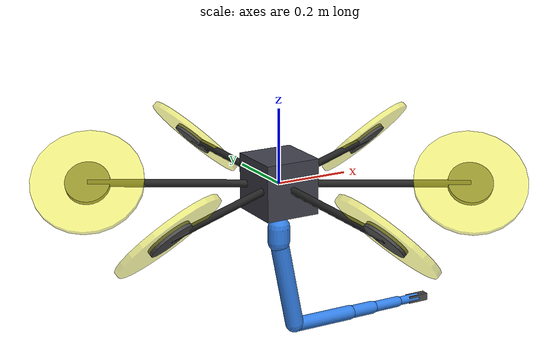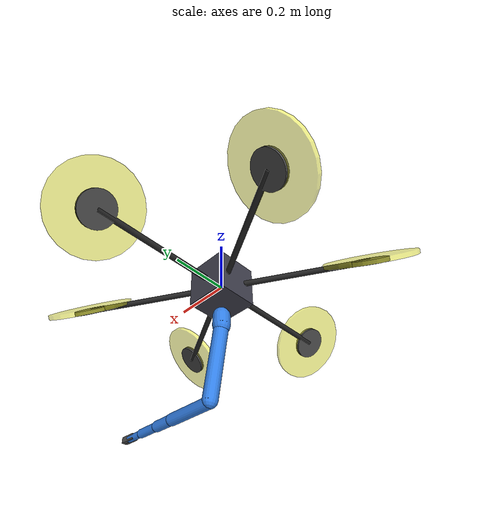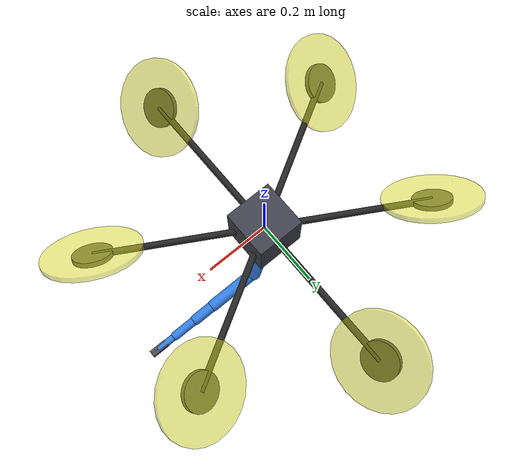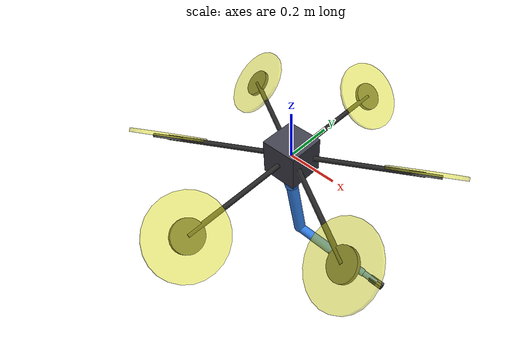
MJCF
<?xml version='1.0' encoding='utf-8'?>
<mujoco model="hexrotor_manipulator">
    <compiler angle="radian" coordinate="local" />
    <option gravity="0 0 -9.81" timestep="0.002" />
    <default>
        <geom contype="1" conaffinity="1" margin="0.002" friction="1.000000 0.100000 0.100000" />
        <joint damping="0.0" armature="0.0" />
        </default>
    <worldbody>
        <body name="drone_base" pos="0 0 0">
            <joint name="root_free" type="free" damping="0.0" armature="0.0" />
            <geom name="drone_chassis" type="box" size="0.075000 0.075000 0.075000" mass="6.000000" rgba="0.250000 0.250000 0.300000 1.000000" friction="1.000000 0.100000 0.100000" />
            <geom name="arm_1" type="cylinder" fromto="0.058457 0.033750 0.000000 0.433013 0.250000 0.000000" size="0.010000" mass="0.100000" rgba="0.150000 0.150000 0.150000 1.000000" />
            <geom name="arm_2" type="cylinder" fromto="0.058457 -0.033750 0.000000 0.433013 -0.250000 0.000000" size="0.010000" mass="0.100000" rgba="0.150000 0.150000 0.150000 1.000000" />
            <geom name="arm_3" type="cylinder" fromto="0.000000 -0.067500 0.000000 0.000000 -0.500000 0.000000" size="0.010000" mass="0.100000" rgba="0.150000 0.150000 0.150000 1.000000" />
            <geom name="arm_4" type="cylinder" fromto="-0.058457 -0.033750 0.000000 -0.433013 -0.250000 0.000000" size="0.010000" mass="0.100000" rgba="0.150000 0.150000 0.150000 1.000000" />
            <geom name="arm_5" type="cylinder" fromto="-0.058457 0.033750 0.000000 -0.433013 0.250000 0.000000" size="0.010000" mass="0.100000" rgba="0.150000 0.150000 0.150000 1.000000" />
            <geom name="arm_6" type="cylinder" fromto="-0.000000 0.067500 0.000000 -0.000000 0.500000 0.000000" size="0.010000" mass="0.100000" rgba="0.150000 0.150000 0.150000 1.000000" />
            <body name="rotor_1_motor" pos="0.433013 0.250000 0.000000" quat="0.923880 -0.331414 -0.191342 0.000000">
                <geom name="rotor_1_motor_geom" type="cylinder" size="0.060000 0.007500" mass="0.200000" rgba="0.3 0.3 0.3 1.0" />
                <body name="rotor_1" pos="0 0 0.007500">
                    <joint name="joint_prop_1" type="hinge" axis="0.000000 0.000000 1.000000" damping="0.0001" armature="0.0001" />
                    <geom name="rotor_1_disk" type="cylinder" size="0.150000 0.007500" mass="0.100000" rgba="0.9 0.9 0.1 0.5" />
                    </body>
                </body>
            <body name="rotor_2_motor" pos="0.433013 -0.250000 0.000000" quat="0.923880 0.331414 -0.191342 0.000000">
                <geom name="rotor_2_motor_geom" type="cylinder" size="0.060000 0.007500" mass="0.200000" rgba="0.3 0.3 0.3 1.0" />
                <body name="rotor_2" pos="0 0 0.007500">
                    <joint name="joint_prop_2" type="hinge" axis="0.000000 0.000000 1.000000" damping="0.0001" armature="0.0001" />
                    <geom name="rotor_2_disk" type="cylinder" size="0.150000 0.007500" mass="0.100000" rgba="0.9 0.9 0.1 0.5" />
                    </body>
                </body>
            <body name="rotor_3_motor" pos="0.000000 -0.500000 0.000000" quat="0.923880 -0.000000 0.382683 0.000000">
                <geom name="rotor_3_motor_geom" type="cylinder" size="0.060000 0.007500" mass="0.200000" rgba="0.3 0.3 0.3 1.0" />
                <body name="rotor_3" pos="0 0 0.007500">
                    <joint name="joint_prop_3" type="hinge" axis="0.000000 0.000000 1.000000" damping="0.0001" armature="0.0001" />
                    <geom name="rotor_3_disk" type="cylinder" size="0.150000 0.007500" mass="0.100000" rgba="0.9 0.9 0.1 0.5" />
                    </body>
                </body>
            <body name="rotor_4_motor" pos="-0.433013 -0.250000 0.000000" quat="0.923880 -0.331414 -0.191342 0.000000">
                <geom name="rotor_4_motor_geom" type="cylinder" size="0.060000 0.007500" mass="0.200000" rgba="0.3 0.3 0.3 1.0" />
                <body name="rotor_4" pos="0 0 0.007500">
                    <joint name="joint_prop_4" type="hinge" axis="0.000000 0.000000 1.000000" damping="0.0001" armature="0.0001" />
                    <geom name="rotor_4_disk" type="cylinder" size="0.150000 0.007500" mass="0.100000" rgba="0.9 0.9 0.1 0.5" />
                    </body>
                </body>
            <body name="rotor_5_motor" pos="-0.433013 0.250000 0.000000" quat="0.923880 0.331414 -0.191342 0.000000">
                <geom name="rotor_5_motor_geom" type="cylinder" size="0.060000 0.007500" mass="0.200000" rgba="0.3 0.3 0.3 1.0" />
                <body name="rotor_5" pos="0 0 0.007500">
                    <joint name="joint_prop_5" type="hinge" axis="0.000000 0.000000 1.000000" damping="0.0001" armature="0.0001" />
                    <geom name="rotor_5_disk" type="cylinder" size="0.150000 0.007500" mass="0.100000" rgba="0.9 0.9 0.1 0.5" />
                    </body>
                </body>
            <body name="rotor_6_motor" pos="-0.000000 0.500000 0.000000" quat="0.923880 -0.000000 0.382683 0.000000">
                <geom name="rotor_6_motor_geom" type="cylinder" size="0.060000 0.007500" mass="0.200000" rgba="0.3 0.3 0.3 1.0" />
                <body name="rotor_6" pos="0 0 0.007500">
                    <joint name="joint_prop_6" type="hinge" axis="0.000000 0.000000 1.000000" damping="0.0001" armature="0.0001" />
                    <geom name="rotor_6_disk" type="cylinder" size="0.150000 0.007500" mass="0.100000" rgba="0.9 0.9 0.1 0.5" />
                    </body>
                </body>
            <body name="arm_mount" pos="0.000000 0.000000 -0.050000" quat="0.000000 1.000000 0.000000 0.000000">
                <body name="shoulder_link" pos="0.000000 0.000000 0.072000">
                    <joint name="shoulder_link_joint" type="hinge" axis="0.000000 0.000000 1.000000" range="-3.141580 3.141580" />
                    <geom name="shoulder_link_capsule" type="capsule" size="0.030000 0.019325" pos="0.000000 0.000000 0.019325" quat="1.000000 0.000000 0.000000 0.000000" mass="0.480879" rgba="0.200000 0.500000 0.900000 1.000000" friction="0.800000 0.100000 0.100000" />
                    <body name="upper_arm_link" pos="0.000000 0.000000 0.038650">
                        <joint name="upper_arm_link_joint" type="hinge" axis="0.000000 1.000000 0.000000" range="-1.884960 1.989680" />
                        <geom name="upper_arm_link_capsule" type="capsule" size="0.025000 0.125000" pos="0.024397 0.000000 0.122596" quat="0.995181 0.000000 0.098059 0.000000" mass="0.430811" rgba="0.200000 0.500000 0.900000 1.000000" friction="0.800000 0.100000 0.100000" />
                        <body name="upper_forearm_link" pos="0.049750 0.000000 0.250000">
                            <joint name="upper_forearm_link_joint" type="hinge" axis="0.000000 1.000000 0.000000" range="-2.146750 1.605700" />
                            <geom name="upper_forearm_link_capsule" type="capsule" size="0.020000 0.087500" pos="0.087500 0.000000 0.000000" quat="0.707107 0.000000 0.707107 0.000000" mass="0.234589" rgba="0.200000 0.500000 0.900000 1.000000" friction="0.800000 0.100000 0.100000" />
                            <body name="lower_forearm_link" pos="0.175000 0.000000 0.000000">
                                <joint name="lower_forearm_link_joint" type="hinge" axis="1.000000 0.000000 0.000000" range="-3.141580 3.141580" />
                                <geom name="lower_forearm_link_capsule" type="capsule" size="0.018000 0.037500" pos="0.037500 0.000000 0.000000" quat="0.707107 0.000000 0.707107 0.000000" mass="0.220991" rgba="0.200000 0.500000 0.900000 1.000000" friction="0.800000 0.100000 0.100000" />
                                <body name="wrist_link" pos="0.075000 0.000000 0.000000">
                                    <joint name="wrist_link_joint" type="hinge" axis="0.000000 1.000000 0.000000" range="-1.745330 2.146750" />
                                    <geom name="wrist_link_capsule" type="capsule" size="0.015000 0.042500" pos="0.042500 0.000000 0.000000" quat="0.707107 0.000000 0.707107 0.000000" mass="0.084957" rgba="0.200000 0.500000 0.900000 1.000000" friction="0.800000 0.100000 0.100000" />
                                    <body name="gripper_link" pos="0.085000 0.000000 0.000000">
                                        <joint name="gripper_link_joint" type="hinge" axis="1.000000 0.000000 0.000000" range="-3.141580 3.141580" />
                                        <geom name="gripper_link_capsule" type="capsule" size="0.012000 0.033000" pos="0.033000 0.000000 0.000000" quat="0.707107 0.000000 0.707107 0.000000" mass="0.110084" rgba="0.200000 0.500000 0.900000 1.000000" friction="0.800000 0.100000 0.100000" />
                                        <body name="left_finger_link" pos="0.066000 0.000000 0.000000">
                                            <joint name="left_finger" type="slide" axis="0 1 0" range="0.000000 0.050000" />
                                            <geom name="left_finger_geom" type="box" size="0.030000 0.006000 0.010000" pos="0.000000 0.005000 0.000000" mass="0.016246" rgba="0.300000 0.300000 0.300000 1.000000" />
                                            </body>
                                        <body name="right_finger_link" pos="0.066000 0.000000 0.000000">
                                            <joint name="right_finger" type="slide" axis="0 1 0" range="-0.050000 -0.000000" />
                                            <geom name="right_finger_geom" type="box" size="0.030000 0.006000 0.010000" pos="0.000000 -0.005000 0.000000" mass="0.016246" rgba="0.300000 0.300000 0.300000 1.000000" />
                                            </body>
                                        </body>
                                    </body>
                                </body>
                            </body>
                        </body>
                    </body>
                </body>
            </body>
        </worldbody>
    <actuator>
        <motor name="joint_prop_1_motor" joint="joint_prop_1" ctrllimited="true" ctrlrange="-50.000000 50.000000" gear="1.0" />
        <motor name="joint_prop_2_motor" joint="joint_prop_2" ctrllimited="true" ctrlrange="-50.000000 50.000000" gear="1.0" />
        <motor name="joint_prop_3_motor" joint="joint_prop_3" ctrllimited="true" ctrlrange="-50.000000 50.000000" gear="1.0" />
        <motor name="joint_prop_4_motor" joint="joint_prop_4" ctrllimited="true" ctrlrange="-50.000000 50.000000" gear="1.0" />
        <motor name="joint_prop_5_motor" joint="joint_prop_5" ctrllimited="true" ctrlrange="-50.000000 50.000000" gear="1.0" />
        <motor name="joint_prop_6_motor" joint="joint_prop_6" ctrllimited="true" ctrlrange="-50.000000 50.000000" gear="1.0" />
        <motor name="shoulder_link_joint_motor" joint="shoulder_link_joint" ctrllimited="true" ctrlrange="-50.000000 50.000000" gear="1.0" />
        <motor name="upper_arm_link_joint_motor" joint="upper_arm_link_joint" ctrllimited="true" ctrlrange="-50.000000 50.000000" gear="1.0" />
        <motor name="upper_forearm_link_joint_motor" joint="upper_forearm_link_joint" ctrllimited="true" ctrlrange="-50.000000 50.000000" gear="1.0" />
        <motor name="lower_forearm_link_joint_motor" joint="lower_forearm_link_joint" ctrllimited="true" ctrlrange="-50.000000 50.000000" gear="1.0" />
        <motor name="wrist_link_joint_motor" joint="wrist_link_joint" ctrllimited="true" ctrlrange="-50.000000 50.000000" gear="1.0" />
        <motor name="gripper_link_joint_motor" joint="gripper_link_joint" ctrllimited="true" ctrlrange="-50.000000 50.000000" gear="1.0" />
        <motor name="left_finger_motor" joint="left_finger" ctrllimited="true" ctrlrange="-50.000000 50.000000" gear="1.0" />
        <motor name="right_finger_motor" joint="right_finger" ctrllimited="true" ctrlrange="-50.000000 50.000000" gear="1.0" />
        </actuator>
    </mujoco>
